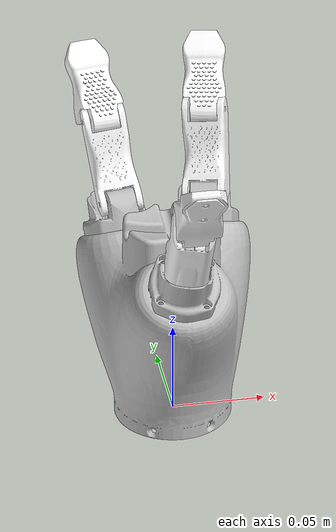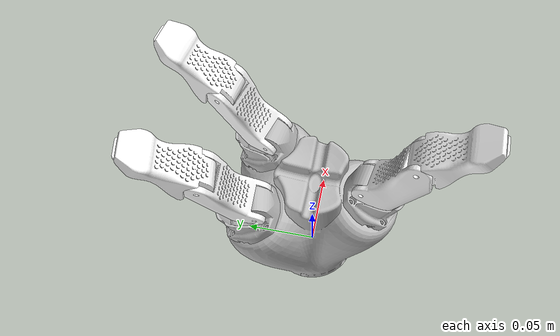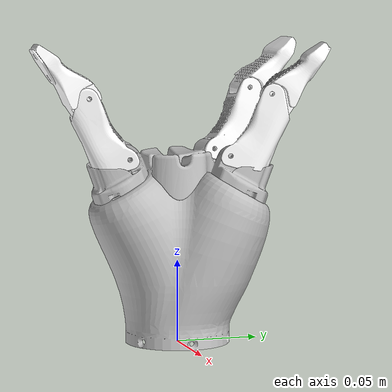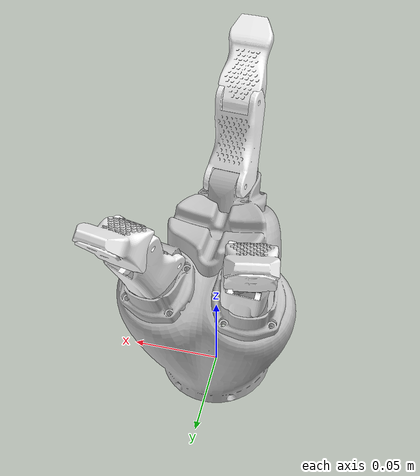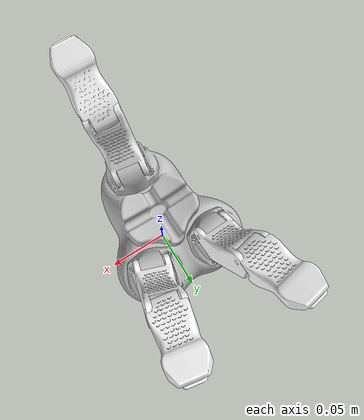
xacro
<?xml version="1.0"?>
<robot name="kinova_kg3"
	xmlns:sensor="http://playerstage.sourceforge.net/gazebo/xmlschema/#sensor"
    xmlns:controller="http://playerstage.sourceforge.net/gazebo/xmlschema/#controller"
    xmlns:joint="http://playerstage.sourceforge.net/gazebo/xmlschema/#slider"
	xmlns:interface="http://playerstage.sourceforge.net/gazebo/xmlschema/#interface"
	xmlns:xacro="http://ros.org/wiki/xacro">

	<property name="PKG" value="package://kinova_kg3/"/>
	<property name="M_PI" value="3.14159265358979"/>

	<xacro:include filename="kinova_kg3.gazebo.xacro"/>
	<link name="jaco_link_hand">
		<inertial>
		  <origin xyz="-0.000227690650068603 0.0042546911231965 0.0759513725294467" rpy="0 0 0" />
		  <mass value="0.49" />
		  <inertia
			ixx="0.000215056800843909"
			ixy="1.82062151904145E-08"
			ixz="1.11116219706148E-07"
			iyy="0.000187460117519514"
			iyz="1.201905023717E-06"
			izz="0.000158164269231599" />
		</inertial>
		<visual>
		  <origin xyz="0 0 0" rpy="0 0 0" />
		  <geometry>
			  <mesh filename="${PKG}meshes/jaco_link_hand.STL" />
		  </geometry>
		  <material name="">
			<color rgba="0.752941176470588 0.752941176470588 0.752941176470588 1" />
		  </material>
		</visual>
		<collision>
		  <origin xyz="0 0 0" rpy="0 0 0" />
		  <geometry>
			  <mesh filename="${PKG}meshes/jaco_link_hand.STL" />
		  </geometry>
		</collision>
	</link>
	<xacro:kinova_kg3_gazebo />

	<xacro:include filename="kinova_kg3_finger.xacro" />
	<xacro:kinova_kg3_finger index="1" origin_xx="0.00228309324472738" origin_yy="-0.0312566848705875" origin_zz="0.114430431187145"
      origin_r="1.57925286601306" origin_p="-0.980344825914001" origin_y="-1.60227019088307" />

	<xacro:kinova_kg3_finger index="2" origin_xx="0.0216844849669984" origin_yy="0.0270991446492316" origin_zz="0.114669378846608"
      origin_r="1.5624840408079" origin_p="-0.979964587178996" origin_y="1.39416913026774" />

	<xacro:kinova_kg3_finger index="3" origin_xx="-0.0228265816404847" origin_yy="0.0270473381757137" origin_zz="0.114459755557531"
      origin_r="1.56250901307788" origin_p="-0.978234931608093" origin_y="1.76352902216187" />

</robot>

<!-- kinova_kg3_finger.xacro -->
<robot name="kinova_kg3_finger" xmlns:xacro="http://ros.org/wiki/xacro">
	<xacro:include filename="kinova_kg3_finger.gazebo.xacro"/>
	<xacro:include filename="kinova_kg3_finger.transmission.xacro"/>
	<xacro:macro name="kinova_kg3_finger" params="index origin_xx origin_yy origin_zz origin_r origin_p origin_y">
		<joint name="jaco_joint_finger_${index}" type="revolute">
			<origin xyz="${origin_xx} ${origin_yy} ${origin_zz}" rpy="${origin_r} ${origin_p} ${origin_y}" />
			<parent link="jaco_link_hand" />
			<child link="jaco_link_finger_${index}" />
			<limit lower="0" upper="${50*M_PI/180}" effort="30" velocity="5"/>
			<axis xyz="0 0 1" />
	    </joint>

    	<link name="jaco_link_finger_${index}">
			<inertial>
		  <origin
			xyz="0.0208280958661102 -0.00622581300157336 -1.06166677567299E-07"
			rpy="0 0 0" />
		  <mass
			value="0.05" />
		  <inertia
			ixx="1.04331946762797E-06"
			ixy="1.35201064011024E-07"
			ixz="-1.63981636937686E-11"
			iyy="2.40166986344156E-06"
			iyz="-2.06309851527123E-12"
			izz="2.18918819368423E-06" />

			</inertial>
			<visual>
			  <origin xyz="0 0 0" rpy="0 0 0" />
			  <geometry>
				  <mesh filename="${PKG}meshes/jaco_link_finger_2.STL" />
			  </geometry>
			  <material name="kinova_color">
				<color rgba="1 1 1 1" />
			  </material>
			</visual>
			<collision>
			  <origin xyz="0 0 0" rpy="0 0 0" />
			  <geometry>
				  <mesh filename="${PKG}meshes/jaco_link_finger_2.STL" />
			  </geometry>
			</collision>
	    </link>

		<link name="jaco_link_finger_tip_${index}">
			<inertial>
			  <origin
				xyz="0.0140498893489319 -0.00605433855046034 2.02852203314789E-07"
				rpy="0 0 0" />
			  <mass
				value="0.03" />
			  <inertia
				ixx="6.8332629760199E-07"
				ixy="-2.81122850352448E-07"
				ixz="-7.46391812800588E-12"
				iyy="2.46927029259255E-06"
				iyz="1.87459305381369E-11"
				izz="2.36577455894539E-06" />
			</inertial>
			<visual>
			  <origin xyz="0 0 0" rpy="0 0 0" />
			  <geometry>
				  <mesh filename="${PKG}meshes/jaco_link_finger_tip_2.STL" />
			  </geometry>
			  <material name="kinova_color"/>
			</visual>
			<collision>
			  <origin xyz="0 0 0" rpy="0 0 0" />
			  <geometry>
				  <mesh filename="${PKG}meshes/jaco_link_finger_tip_2.STL" />
			  </geometry>
			</collision>
		</link>
		<joint name="jaco_joint_finger_tip_${index}" type="revolute">

		    <origin xyz="0.0441021541423999 0 0" rpy="-1.11022302462516E-16 1.38777878078145E-17 -8.67361737988404E-18" />
			<parent link="jaco_link_finger_${index}" />
			<child link="jaco_link_finger_tip_${index}" />
			<limit lower="0" upper="${50*M_PI/180}" effort="30" velocity="5"/>
			<axis xyz="0 0 1" />
		</joint>

		<xacro:kinova_kg3_finger_gazebo index="${index}" />
		<xacro:kinova_kg3_finger_transmission index="${index}" />
	</xacro:macro>
</robot>
